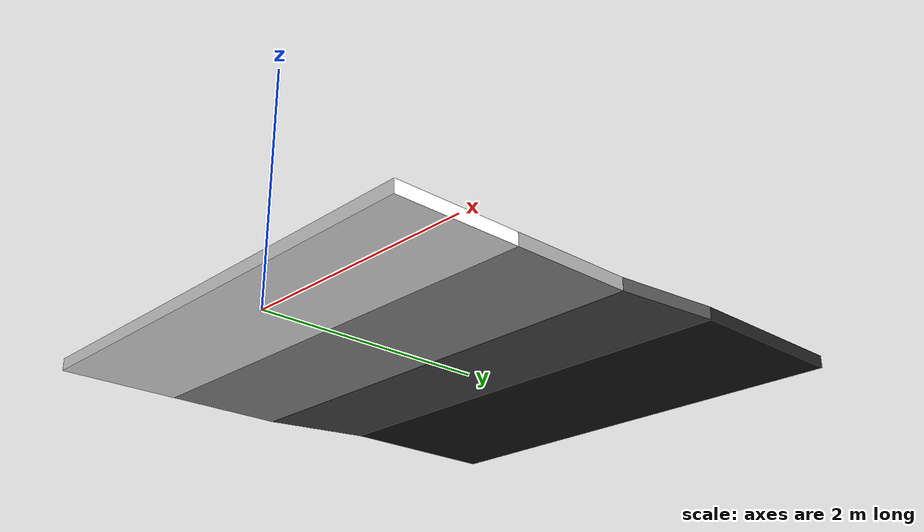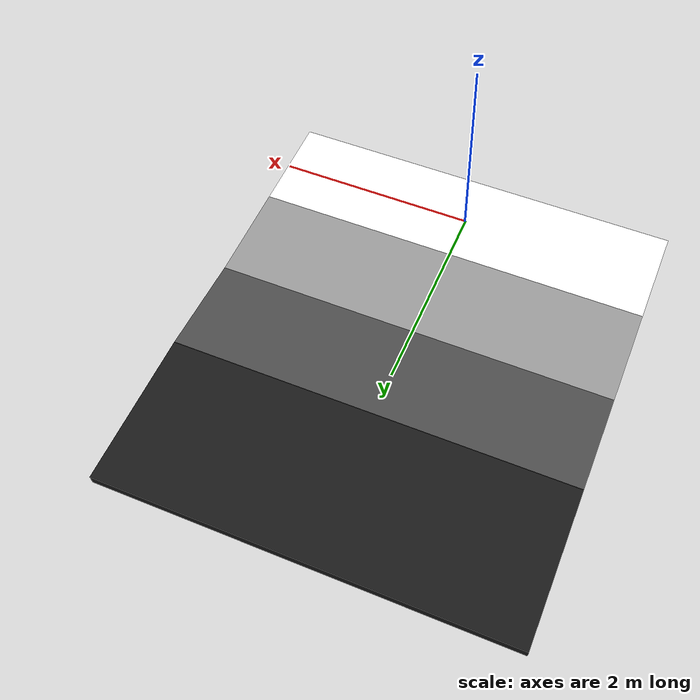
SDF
<?xml version="1.0" ?>
<sdf version="1.9">
  <model name="ground">
    <static>true</static>

    <!-- Collision mesh globale -->
    <link name="link_ground_collision">
      <pose>0 0 -0.05 0 0 0</pose>
      <collision name="ground_collision">
        <geometry>
          <mesh>
            <uri>ground_plane_arena_3.stl</uri>
            <scale>0.1 0.1 0.1</scale>
          </mesh>
        </geometry>
      </collision>
    </link>

    <!-- Area inferiore -->
    <link name="link_lower_area">
      <pose>0 0 0 0 0 0</pose>
      <visual name="nest_area">
        <pose>0 0 0 0 0 0</pose>
        <geometry>
          <box>
            <size>4.0 1.0 0.1</size>
          </box>
        </geometry>
        <material>
          <diffuse>1 1 1 1</diffuse>
        </material>
      </visual>
      <visual name="cache_area">
        <pose>0 1.0 0 0 0 0</pose>
        <geometry>
          <box>
            <size>4.0 1.0 0.1</size>
          </box>
        </geometry>
        <material>
          <diffuse>0.6 0.6 0.6 1</diffuse>
        </material>
      </visual>
    </link>

    <!-- Rampa -->
    <link name="link_slope">
      <pose relative_to="joint_cache_slope">0 0.5 0 0 0 0</pose>
      <visual name="visual_slope">
        <geometry>
          <box>
            <size>4.0 1.0 0.1</size>
          </box>
        </geometry>
        <material>
          <diffuse>0.3 0.3 0.3 1</diffuse>
        </material>
      </visual>
    </link>

    <!-- Area superiore -->
    <link name="link_source_area">
      <pose relative_to="joint_slope_source">0 0.75 0 0 0 0</pose>
      <visual name="visual_source_area">
        <geometry>
          <box>
            <size>4.0 1.5 0.1</size>
          </box>
        </geometry>
        <material>
          <diffuse>0.1 0.1 0.1 1</diffuse>
        </material>
      </visual>
    </link>

    <!-- Giunti fissi -->
    <joint name="joint_cache_slope" type="fixed">
      <parent>link_lower_area</parent>
      <child>link_slope</child>
      <pose relative_to="link_lower_area">0 1.5 0 0.07 0 0</pose>
      <axis>
        <xyz>1 0 0</xyz>
      </axis>
    </joint>
    <joint name="joint_slope_source" type="fixed">
      <parent>link_slope</parent>
      <child>link_source_area</child>
      <pose relative_to="link_slope">0 0.5 0 -0.07 0 0</pose>
      <axis>
        <xyz>1 0 0</xyz>
      </axis>
    </joint>
  </model>
</sdf>
